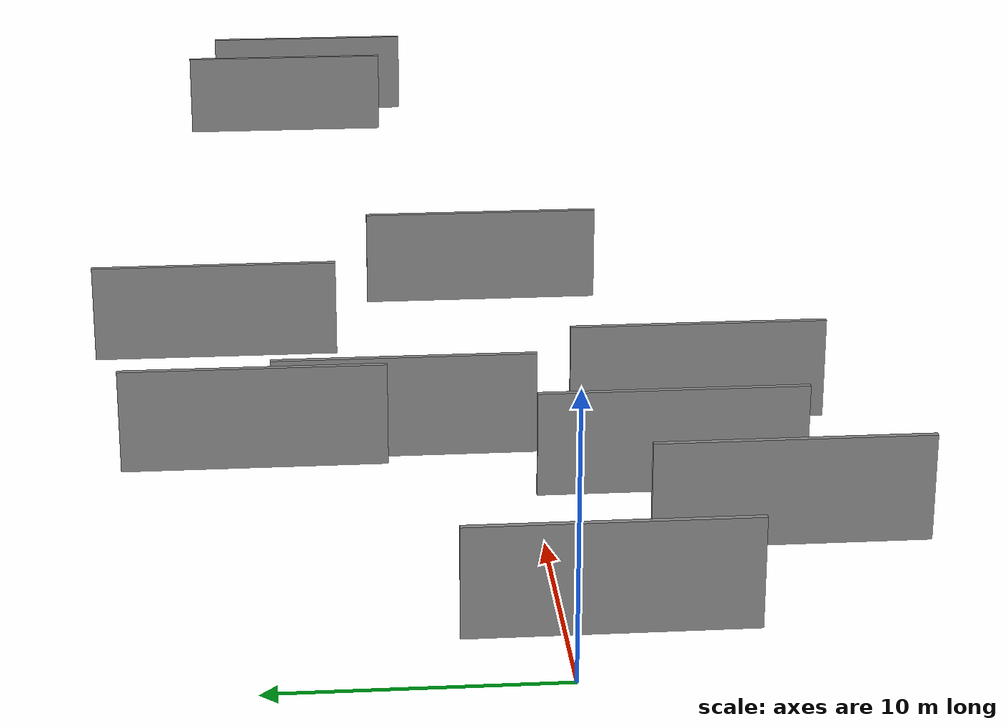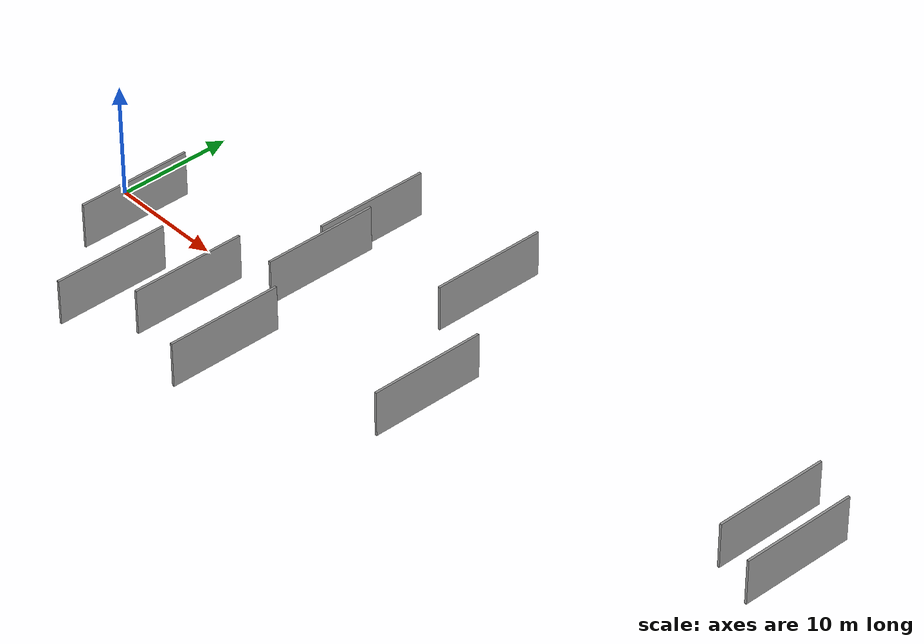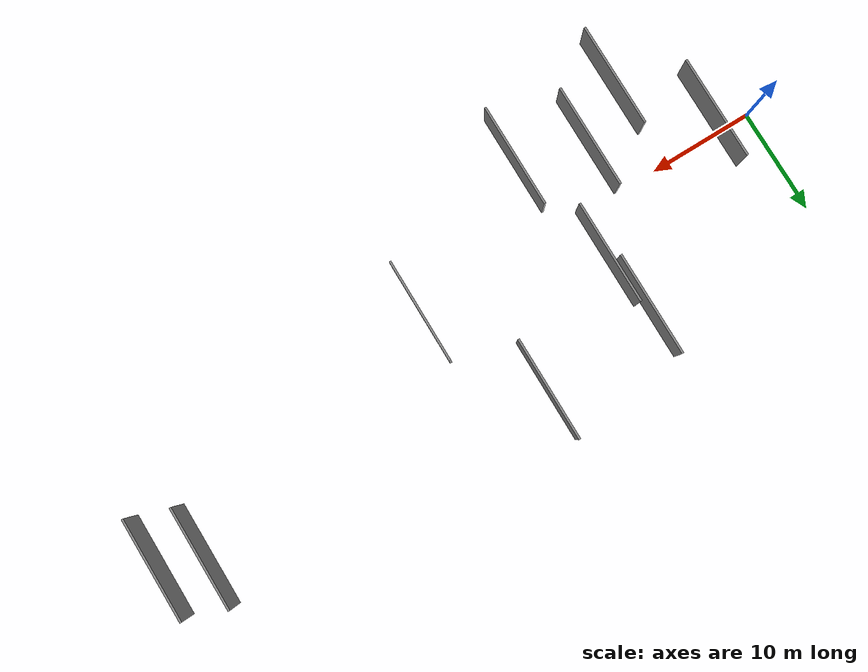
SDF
<sdf version="1.6">
 <world name="default">
  <scene>
   <sky><clouds><speed>12</speed></clouds></sky>
   <ambient>0.4 0.4 0.4 1</ambient>
   <background>0.7 0.7 0.7 1</background>
   <shadows>1</shadows>
  </scene>
  <gravity>0 0 -9.8066</gravity>
  <magnetic_field>6e-06 2.3e-05 -4.2e-05</magnetic_field>
  <physics default="0" name="default_physics" type="ode">
   <ode>
    <solver>
     <type>quick</type>
     <iters>10</iters>
     <sor>1.0</sor>
     <use_dynamic_moi_rescaling>0</use_dynamic_moi_rescaling>
    </solver>
    <constraints>
     <cfm>0</cfm>
     <erp>0.2</erp>
     <contact_max_correcting_vel>100</contact_max_correcting_vel>
     <contact_surface_layer>0.001</contact_surface_layer>
    </constraints>
   </ode>
   <max_step_size>0.004</max_step_size>
   <real_time_factor>1</real_time_factor>
   <real_time_update_rate>250</real_time_update_rate>
  </physics>
  <light name="sun" type="directional">
   <pose>0 0 10 0 0 0</pose>
   <diffuse>0.8 0.8 0.8 1</diffuse>
   <specular>0.2 0.2 0.2 1</specular>
   <attenuation>
    <range>1000</range>
    <constant>0.9</constant>
    <linear>0.01</linear>
    <quadratic>0.001</quadratic>
   </attenuation>
   <direction>-0.5 0.1 -0.9</direction>
  </light>
  <model name="grey_wall_1">
   <static>1</static>
   <pose>34.7244 0.3054 0.0 0.000000 0.000000 1.570796</pose>
   <link name="link">
    <pose>0 0 2.00 0 0 0</pose>
    <collision name="collision"><geometry><box><size>10.00 0.2 4.00</size></box></geometry></collision>
    <visual name="visual">
     <cast_shadows>0</cast_shadows>
     <geometry><box><size>10.00 0.2 4.00</size></box></geometry>
     <material>
      <script>
       <uri>model://grey_wall/materials/scripts</uri>
       <uri>model://grey_wall/materials/textures</uri>
       <name>vrc/grey_wall</name>
      </script>
     </material>
    </visual>
   </link>
  </model>
  <model name="grey_wall_2">
   <static>1</static>
   <pose>17.3599 10.1697 0.0 0.000000 0.000000 1.570796</pose>
   <link name="link">
    <pose>0 0 2.00 0 0 0</pose>
    <collision name="collision"><geometry><box><size>10.00 0.2 4.00</size></box></geometry></collision>
    <visual name="visual">
     <cast_shadows>0</cast_shadows>
     <geometry><box><size>10.00 0.2 4.00</size></box></geometry>
     <material>
      <script>
       <uri>model://grey_wall/materials/scripts</uri>
       <uri>model://grey_wall/materials/textures</uri>
       <name>vrc/grey_wall</name>
      </script>
     </material>
    </visual>
   </link>
  </model>
  <model name="grey_wall_3">
   <static>1</static>
   <pose>14.0893 -5.1337 0.0 0.000000 0.000000 1.570796</pose>
   <link name="link">
    <pose>0 0 2.00 0 0 0</pose>
    <collision name="collision"><geometry><box><size>10.00 0.2 4.00</size></box></geometry></collision>
    <visual name="visual">
     <cast_shadows>0</cast_shadows>
     <geometry><box><size>10.00 0.2 4.00</size></box></geometry>
     <material>
      <script>
       <uri>model://grey_wall/materials/scripts</uri>
       <uri>model://grey_wall/materials/textures</uri>
       <name>vrc/grey_wall</name>
      </script>
     </material>
    </visual>
   </link>
  </model>
  <model name="grey_wall_4">
   <static>1</static>
   <pose>3.2686 -1.5301 0.0 0.000000 0.000000 1.570796</pose>
   <link name="link">
    <pose>0 0 2.00 0 0 0</pose>
    <collision name="collision"><geometry><box><size>10.00 0.2 4.00</size></box></geometry></collision>
    <visual name="visual">
     <cast_shadows>0</cast_shadows>
     <geometry><box><size>10.00 0.2 4.00</size></box></geometry>
     <material>
      <script>
       <uri>model://grey_wall/materials/scripts</uri>
       <uri>model://grey_wall/materials/textures</uri>
       <name>vrc/grey_wall</name>
      </script>
     </material>
    </visual>
   </link>
  </model>
  <model name="grey_wall_5">
   <static>1</static>
   <pose>28.7601 11.8089 0.0 0.000000 0.000000 1.570796</pose>
   <link name="link">
    <pose>0 0 2.00 0 0 0</pose>
    <collision name="collision"><geometry><box><size>10.00 0.2 4.00</size></box></geometry></collision>
    <visual name="visual">
     <cast_shadows>0</cast_shadows>
     <geometry><box><size>10.00 0.2 4.00</size></box></geometry>
     <material>
      <script>
       <uri>model://grey_wall/materials/scripts</uri>
       <uri>model://grey_wall/materials/textures</uri>
       <name>vrc/grey_wall</name>
      </script>
     </material>
    </visual>
   </link>
  </model>
  <model name="grey_wall_6">
   <static>1</static>
   <pose>20.6171 -7.0664 0.0 0.000000 0.000000 1.570796</pose>
   <link name="link">
    <pose>0 0 2.00 0 0 0</pose>
    <collision name="collision"><geometry><box><size>10.00 0.2 4.00</size></box></geometry></collision>
    <visual name="visual">
     <cast_shadows>0</cast_shadows>
     <geometry><box><size>10.00 0.2 4.00</size></box></geometry>
     <material>
      <script>
       <uri>model://grey_wall/materials/scripts</uri>
       <uri>model://grey_wall/materials/textures</uri>
       <name>vrc/grey_wall</name>
      </script>
     </material>
    </visual>
   </link>
  </model>
  <model name="grey_wall_7">
   <static>1</static>
   <pose>9.3497 -8.6654 0.0 0.000000 0.000000 1.570796</pose>
   <link name="link">
    <pose>0 0 2.00 0 0 0</pose>
    <collision name="collision"><geometry><box><size>10.00 0.2 4.00</size></box></geometry></collision>
    <visual name="visual">
     <cast_shadows>0</cast_shadows>
     <geometry><box><size>10.00 0.2 4.00</size></box></geometry>
     <material>
      <script>
       <uri>model://grey_wall/materials/scripts</uri>
       <uri>model://grey_wall/materials/textures</uri>
       <name>vrc/grey_wall</name>
      </script>
     </material>
    </visual>
   </link>
  </model>
  <model name="grey_wall_8">
   <static>1</static>
   <pose>65.2737 7.4251 0.0 0.000000 0.000000 1.570796</pose>
   <link name="link">
    <pose>0 0 2.00 0 0 0</pose>
    <collision name="collision"><geometry><box><size>10.00 0.2 4.00</size></box></geometry></collision>
    <visual name="visual">
     <cast_shadows>0</cast_shadows>
     <geometry><box><size>10.00 0.2 4.00</size></box></geometry>
     <material>
      <script>
       <uri>model://grey_wall/materials/scripts</uri>
       <uri>model://grey_wall/materials/textures</uri>
       <name>vrc/grey_wall</name>
      </script>
     </material>
    </visual>
   </link>
  </model>
  <model name="grey_wall_9">
   <static>1</static>
   <pose>61.3508 8.6874 0.0 0.000000 0.000000 1.570796</pose>
   <link name="link">
    <pose>0 0 2.00 0 0 0</pose>
    <collision name="collision"><geometry><box><size>10.00 0.2 4.00</size></box></geometry></collision>
    <visual name="visual">
     <cast_shadows>0</cast_shadows>
     <geometry><box><size>10.00 0.2 4.00</size></box></geometry>
     <material>
      <script>
       <uri>model://grey_wall/materials/scripts</uri>
       <uri>model://grey_wall/materials/textures</uri>
       <name>vrc/grey_wall</name>
      </script>
     </material>
    </visual>
   </link>
  </model>
  <model name="grey_wall_10">
   <static>1</static>
   <pose>18.0288 4.4970 0.0 0.000000 0.000000 1.570796</pose>
   <link name="link">
    <pose>0 0 2.00 0 0 0</pose>
    <collision name="collision"><geometry><box><size>10.00 0.2 4.00</size></box></geometry></collision>
    <visual name="visual">
     <cast_shadows>0</cast_shadows>
     <geometry><box><size>10.00 0.2 4.00</size></box></geometry>
     <material>
      <script>
       <uri>model://grey_wall/materials/scripts</uri>
       <uri>model://grey_wall/materials/textures</uri>
       <name>vrc/grey_wall</name>
      </script>
     </material>
    </visual>
   </link>
  </model>
 </world>
</sdf>
